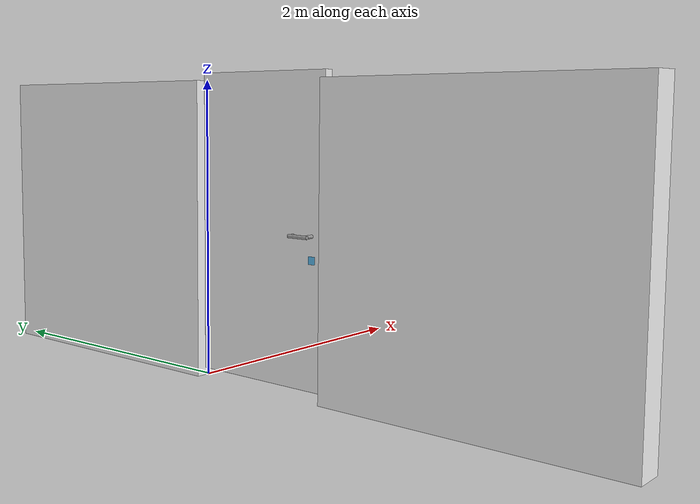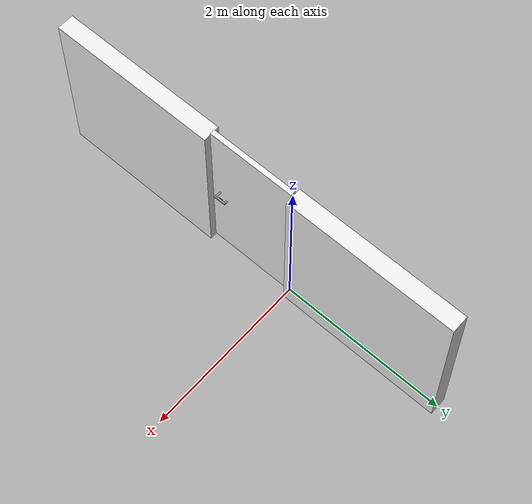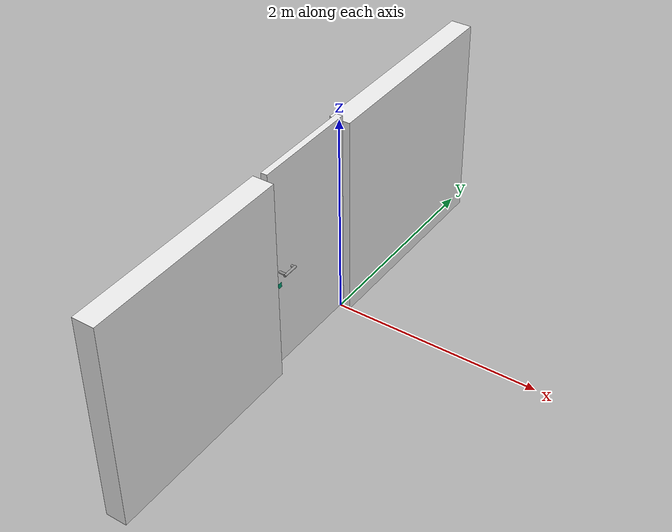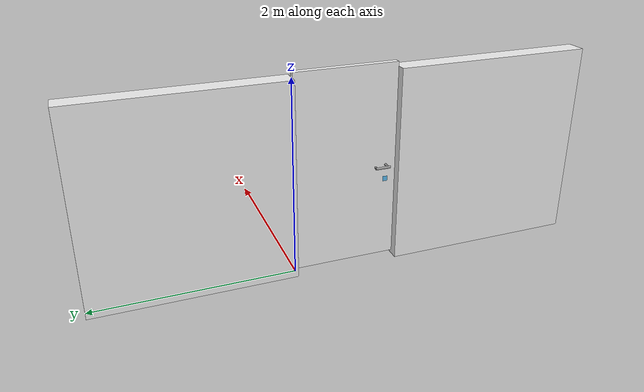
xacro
<?xml version="1.0"?>
<robot name="door_scaled0" xmlns:xacro="http://ros.org/wiki/xacro">

  <xacro:property name="M_PI"  value="3.1415926535897931"/>
  <xacro:property name="door_width"  value="1.03"/>
  <xacro:property name="door_thickness"  value="0.06"/>
  <xacro:property name="door_direction"  value="backward"/> <!-- forward = open up in world-x direction; backward = open up in minus world-x direction -->
  <xacro:property name="door_max_angle"  value="${M_PI/2}"/>
  <xacro:property name="flip_door"  value="0"/> <!-- 1 = door is turned around by 180 degrees -->
  <xacro:property name="handle_dist_to_edge" value="0.1"/>
  <xacro:property name="handle_height"  value="1.03"/>
  <xacro:property name="handle_length"  value="0.14"/>
  <xacro:property name="handle_dist_to_door"  value="0.07"/>
  <xacro:property name="handle_max_angle"  value="0"/> <!-- ${M_PI/4} -->
  <xacro:property name="wall1_length"  value="2"/>
  <xacro:property name="wall1_thickness"  value="0.2"/>
  <xacro:property name="colour_door" value="White"/>
  <xacro:property name="colour_handle" value="Grey"/>
  <xacro:property name="aruco_no" value="aruco_1"/>

  <xacro:if value="${door_direction == 'forward'}">
    <xacro:property name = "door_angle_upper" value = "${door_max_angle}" />
    <xacro:property name = "door_angle_lower" value = "0" />
  </xacro:if>
  <xacro:if value="${door_direction == 'backward'}">
    <xacro:property name = "door_angle_upper" value = "0" />
    <xacro:property name = "door_angle_lower" value = "${-door_max_angle}" />
  </xacro:if>

<xacro:macro name="joint_element" params="name parent child x y z r p ya type x_ax y_ax z_ax limit_low limit_up damping friction effort velocity">
    <joint name="${name}_joint" type="${type}">
        <parent link="${parent}"/>
        <child link="${child}"/>
        <origin xyz="${x} ${y} ${z}" rpy="${r} ${p} ${ya}"/>
        <axis xyz="${x_ax} ${y_ax} ${z_ax}"/>
        <limit effort="${effort}" velocity="${velocity}" lower="${limit_low}" upper="${limit_up}"/>
        <dynamics damping="${damping}" friction="${friction}"/>
    </joint>
</xacro:macro>

<xacro:macro name="link_element_box" params="name x y z r p ya mass x_s y_s z_s ixx iyy izz mu1 mu2 material selfCollide gravityOff">
  <link name="${name}_link">
    <inertial>
      <mass value="${mass}" />
      <origin xyz="${x} ${y} ${z}" rpy="${r} ${p} ${ya}"/>
      <inertia ixx="${ixx}" ixy="0"  ixz="0"
               iyy="${iyy}" iyz="0"
               izz="${izz}" />
    </inertial>
    <visual>
      <origin xyz="${x} ${y} ${z}" rpy="${r} ${p} ${ya}" />
      <geometry name="${name}_visual_geom">
        <box size="${x_s} ${y_s} ${z_s}" />
      </geometry>
    </visual>
    <collision>
      <origin xyz="${x} ${y} ${z}" rpy="${r} ${p} ${ya}" />
      <geometry name="${name}_collision_geom">
        <box size="${x_s} ${y_s} ${z_s}" />
      </geometry>
    </collision>
  </link>
  <gazebo reference="${name}_link">
    <mu1>${mu1}</mu1>
    <mu2>${mu2}</mu2>
    <selfCollide>${selfCollide}</selfCollide>
    <turnGravityOff>${gravityOff}</turnGravityOff>
    <material>${material}</material>
    <!-- alternatively to material -> use visual element for detailed colours -->
  </gazebo>
</xacro:macro>

<xacro:macro name="link_element_cylinder" params="name x y z r p ya mass radius length ixx iyy izz mu1 mu2 material selfCollide gravityOff">
  <link name="${name}_link">
    <inertial>
      <mass value="${mass}" />
      <origin xyz="${x} ${y} ${z}" rpy="${r} ${p} ${ya}"/>
      <inertia ixx="${ixx}" ixy="0"  ixz="0"
               iyy="${iyy}" iyz="0"
               izz="${izz}" />
    </inertial>
    <visual>
      <origin xyz="${x} ${y} ${z}" rpy="${r} ${p} ${ya}" />
      <geometry name="${name}_visual_geom">
        <cylinder radius="${radius}" length="${length}" />
      </geometry>
    </visual>
    <collision>
      <origin xyz="${x} ${y} ${z}" rpy="${r} ${p} ${ya}" />
      <geometry name="${name}_collision_geom">
        <cylinder radius="${radius}" length="${length}" />
      </geometry>
    </collision>
  </link>
  <gazebo reference="${name}_link">
    <mu1>${mu1}</mu1>
    <mu2>${mu2}</mu2>
    <selfCollide>${selfCollide}</selfCollide>
    <turnGravityOff>${gravityOff}</turnGravityOff>
    <material>${material}</material>
    <!-- alternatively to material -> use visual element for detailed colours -->
  </gazebo>
</xacro:macro>

<link name="world"/>

<xacro:joint_element name="world_fixed" parent="world" child="wall1_link"
  x="0" y="0" z="0.0" r="0" p="0" ya="${flip_door * M_PI}"
  type="fixed" x_ax="0" y_ax="0" z_ax="0" limit_low="0" limit_up="0"
  damping="0" friction="0" effort="0" velocity="0">
</xacro:joint_element>

<xacro:link_element_box name="wall1" x="0" y="${wall1_length/2}" z="1" r="0" p="0" ya="0"
  mass="100" x_s="${wall1_thickness}" y_s="${wall1_length}" z_s="2" ixx="10" iyy="10" izz="10"
  mu1="1000" mu2="1000" material="Gazebo/White" selfCollide="false" gravityOff="false">
</xacro:link_element_box>

<xacro:joint_element name="wall1_wall2" parent="wall1_link" child="wall2_link"
  x="0" y="${-(door_width + 0.01)}" z="0.0" r="0" p="0" ya="0"
  type="fixed" x_ax="0" y_ax="0" z_ax="0" limit_low="0" limit_up="0"
  damping="0" friction="0" effort="0" velocity="0">
</xacro:joint_element>

<xacro:link_element_box name="wall2" x="0" y="${-wall1_length/2}" z="1" r="0" p="0" ya="0"
  mass="100" x_s="${wall1_thickness}" y_s="${wall1_length}" z_s="2" ixx="10" iyy="10" izz="10"
  mu1="1000" mu2="1000" material="Gazebo/White" selfCollide="false" gravityOff="false">
</xacro:link_element_box>

<xacro:joint_element name="door" parent="wall1_link" child="door_link"
  x="0" y="0" z="0" r="0" p="0" ya="0"
  type="revolute" x_ax="0" y_ax="0" z_ax="1" limit_low="${door_angle_lower}" limit_up="${door_angle_upper}"
  damping="0.1" friction="0.1" effort="10000000" velocity="10">
</xacro:joint_element>

<xacro:link_element_box name="door" x="0" y="${-door_width/2}" z="1.05" r="0" p="0" ya="${M_PI}"
  mass="30" x_s="${door_thickness}" y_s="${door_width}" z_s="2.0" ixx="1.0" iyy="1.0" izz="3.0"
  mu1="1000" mu2="1000" material="Gazebo/${colour_door}" selfCollide="false" gravityOff="false">
</xacro:link_element_box> <!-- TODO had dampingFactor of 0.01 before maybe relevant-->

<xacro:joint_element name="handle_axes" parent="door_link" child="handle_axes_link"
  x="0" y="${-(door_width-handle_dist_to_edge)}" z="${handle_height}" r="0" p="0" ya="0"
  type="revolute" x_ax="1" y_ax="0" z_ax="0" limit_low="${-handle_max_angle}" limit_up="0"
  damping="0.1" friction="0.1" effort="10000000" velocity="10">
</xacro:joint_element>

<xacro:link_element_cylinder name="handle_axes" x="0" y="0" z="0" r="0" p="${M_PI/2}" ya="0"
  mass="1" radius="0.012" length="${door_thickness + 2*handle_dist_to_door}" ixx="1.0" iyy="1.0" izz="1.0"
  mu1="1000" mu2="1000" material="Gazebo/${colour_handle}" selfCollide="false" gravityOff="false">
</xacro:link_element_cylinder>

<xacro:joint_element name="handle_element2" parent="handle_axes_link" child="handle_element2_link"
  x="-${door_thickness/2 + handle_dist_to_door}" y="0" z="0" r="${M_PI/2}" p="0" ya="0"
  type="fixed" x_ax="0" y_ax="0" z_ax="0" limit_low="0" limit_up="0"
  damping="0" friction="0" effort="0" velocity="0">
</xacro:joint_element>

<xacro:link_element_cylinder name="handle_element2" x="0" y="0" z="-0.055" r="0" p="0" ya="0"
  mass="1" radius="0.012" length="0.15" ixx="1.0" iyy="1.0" izz="1.0"
  mu1="1000" mu2="1000" material="Gazebo/${colour_handle}" selfCollide="false" gravityOff="false">
</xacro:link_element_cylinder>

<xacro:joint_element name="handle_element3" parent="handle_element2_link" child="handle_element3_link"
  x="0" y="0" z="-0.12" r="0" p="${M_PI/2}" ya="0"
  type="fixed" x_ax="0" y_ax="0" z_ax="0" limit_low="0" limit_up="0"
  damping="0" friction="0" effort="0" velocity="0">
</xacro:joint_element>

<xacro:link_element_cylinder name="handle_element3" x="0" y="0" z="0.02" r="0" p="0" ya="0"
  mass="1" radius="0.012" length="0.03" ixx="1.0" iyy="1.0" izz="1.0"
  mu1="1000" mu2="1000" material="Gazebo/${colour_handle}" selfCollide="false" gravityOff="false">
</xacro:link_element_cylinder>

<xacro:joint_element name="handle_element2_mirror" parent="handle_axes_link" child="handle_element2_mirror_link"
  x="${door_thickness/2 + handle_dist_to_door}" y="0" z="0" r="${M_PI/2}" p="0" ya="0"
  type="fixed" x_ax="0" y_ax="0" z_ax="0" limit_low="0" limit_up="0"
  damping="0" friction="0" effort="0" velocity="0">
</xacro:joint_element>

<xacro:link_element_cylinder name="handle_element2_mirror" x="0" y="0" z="-0.055" r="0" p="0" ya="0"
  mass="1" radius="0.012" length="0.15" ixx="1.0" iyy="1.0" izz="1.0"
  mu1="1000" mu2="1000" material="Gazebo/${colour_handle}" selfCollide="false" gravityOff="false">
</xacro:link_element_cylinder>

<xacro:joint_element name="handle_element3_mirror" parent="handle_element2_mirror_link" child="handle_element3_mirror_link"
  x="0" y="0" z="-0.12" r="0" p="${M_PI/2}" ya="0"
  type="fixed" x_ax="0" y_ax="0" z_ax="0" limit_low="0" limit_up="0"
  damping="0" friction="0" effort="0" velocity="0">
</xacro:joint_element>

<xacro:link_element_cylinder name="handle_element3_mirror" x="0" y="0" z="-0.02" r="0" p="0" ya="0"
  mass="1" radius="0.012" length="0.03" ixx="1.0" iyy="1.0" izz="1.0"
  mu1="1000" mu2="1000" material="Gazebo/${colour_handle}" selfCollide="false" gravityOff="false">
</xacro:link_element_cylinder>

<xacro:joint_element name="handle_axes_for_aruco" parent="door_link" child="aruco_code_link"
  x="0" y="${-(door_width-handle_dist_to_edge)}" z="${handle_height}" r="0" p="0" ya="0"
  type="fixed" x_ax="0" y_ax="0" z_ax="0" limit_low="0" limit_up="0"
  damping="0" friction="0" effort="0" velocity="0">
</xacro:joint_element>

<xacro:link_element_box name="aruco_code" x="-${door_thickness/2 + 0.001}" y="0" z="-0.15" r="0" p="${-M_PI/2}" ya="0"
  mass="100" x_s="0.05" y_s="0.05" z_s="0.001" ixx="0.5" iyy="0.5" izz="0.5"
  mu1="0" mu2="0" material="${aruco_no}" selfCollide="false" gravityOff="false">
</xacro:link_element_box>

<xacro:joint_element name="handle_axes_for_aruco_mirror" parent="door_link" child="aruco_code_mirror_link"
  x="0" y="${-(door_width-handle_dist_to_edge)}" z="${handle_height}" r="0" p="0" ya="0"
  type="fixed" x_ax="0" y_ax="0" z_ax="0" limit_low="0" limit_up="0"
  damping="0" friction="0" effort="0" velocity="0">
</xacro:joint_element>

<xacro:link_element_box name="aruco_code_mirror" x="${door_thickness/2 + 0.001}" y="0" z="-0.15" r="0" p="${M_PI/2}" ya="0"
  mass="100" x_s="0.05" y_s="0.05" z_s="0.001" ixx="0.5" iyy="0.5" izz="0.5"
  mu1="0" mu2="0" material="${aruco_no}" selfCollide="false" gravityOff="false">
</xacro:link_element_box>

<xacro:macro name="joint_transmission_and_interface" params="name_joint type hardwareInterface mechanicalReduction">
  <transmission name="${name_joint}_trans">
    <type>transmission_interface/${type}</type>
    <joint name="${name_joint}">
      <hardwareInterface>${hardwareInterface}</hardwareInterface>
    </joint>
      <actuator name="${name_joint}_motor">
      <hardwareInterface>${hardwareInterface}</hardwareInterface>
      <mechanicalReduction>${mechanicalReduction}</mechanicalReduction>
    </actuator>
  </transmission>
</xacro:macro>

<xacro:joint_transmission_and_interface name_joint="door_joint" type="SimpleTransmission" hardwareInterface="EffortJointInterface" mechanicalReduction="1"/>
<xacro:joint_transmission_and_interface name_joint="handle_axes_joint" type="SimpleTransmission" hardwareInterface="EffortJointInterface" mechanicalReduction="1"/>

  <!-- gazebo plugin for controlling the door-->
<gazebo>
  <plugin name="gazebo_ros_control" filename="libgazebo_ros_control.so">
      <robotNamespace>/door_scaled0</robotNamespace>
    <robotSimType>gazebo_ros_control/DefaultRobotHWSim</robotSimType>
  </plugin>
</gazebo>

</robot>
